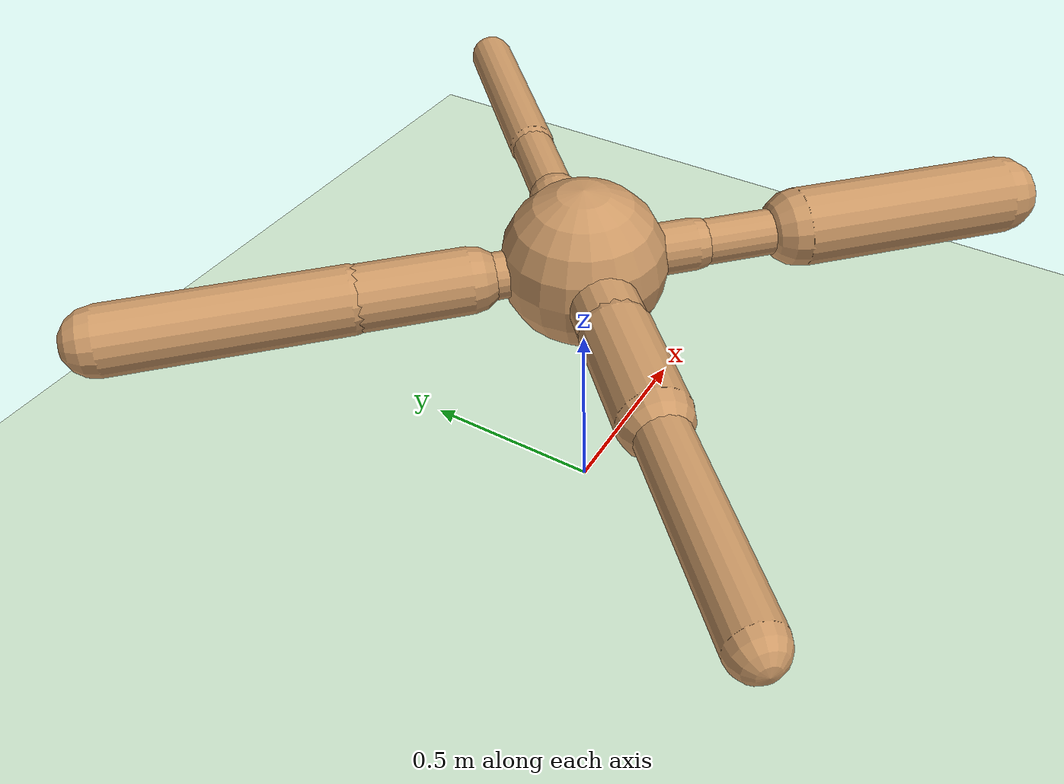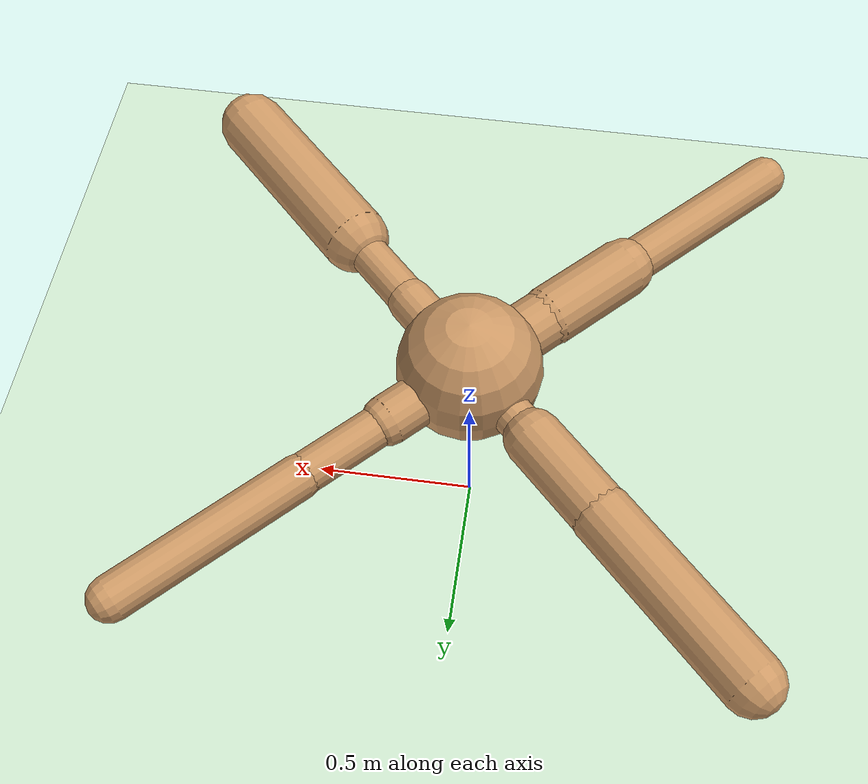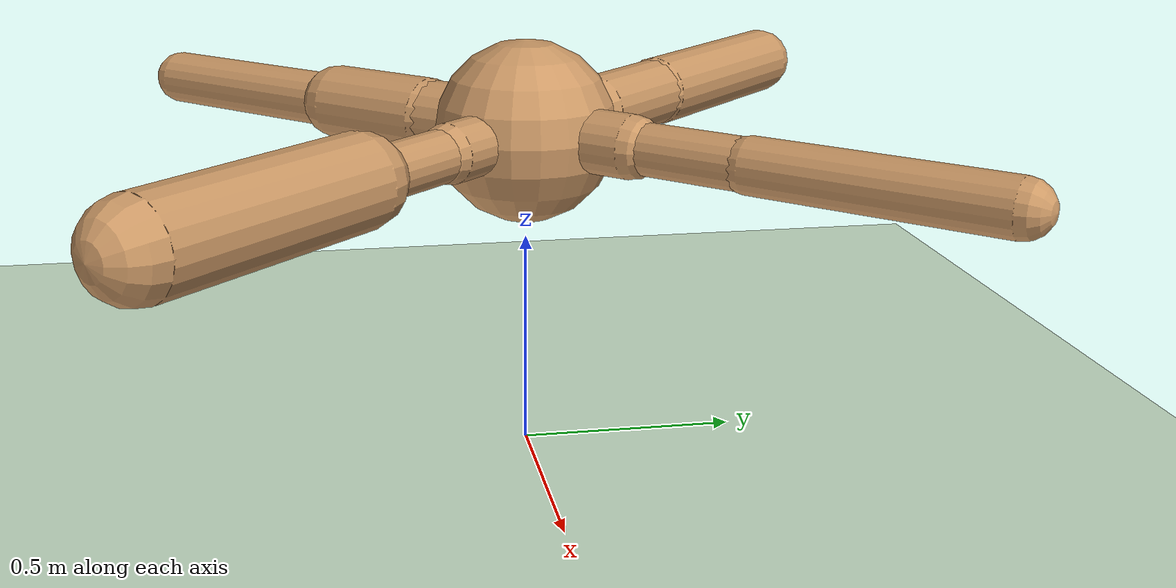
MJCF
<?xml version="1.0" encoding="utf-8"?>
<mujoco model="ant">
	<compiler angle="degree" coordinate="local" inertiafromgeom="true"></compiler>
	<option integrator="RK4" timestep="0.01"></option>
	<custom>
		<numeric data="0.0 0.0 0.55 1.0 0.0 0.0 0.0 0.0 1.0 0.0 -1.0 0.0 -1.0 0.0 1.0" name="init_qpos"></numeric>
	</custom>
	<default>
		<joint armature="1" damping="0.9370322554701205" limited="true"></joint>
		<geom conaffinity="0" condim="3" density="5.0" friction="0.8898518286674307 0.4127305745078427 0.5071761926364183" margin="0.01" rgba="0.8 0.6 0.4 1"></geom>
	</default>
	<asset>
		<texture builtin="gradient" height="100" rgb1="1 1 1" rgb2="0 0 0" type="skybox" width="100"></texture>
		<texture builtin="flat" height="1278" mark="cross" markrgb="1 1 1" name="texgeom" random="0.01" rgb1="0.8 0.6 0.4" rgb2="0.8 0.6 0.4" type="cube" width="127"></texture>
		<texture builtin="checker" height="100" name="texplane" rgb1="0 0 0" rgb2="0.8 0.8 0.8" type="2d" width="100"></texture>
		<material name="MatPlane" reflectance="0.5" shininess="1" specular="1" texrepeat="60 60" texture="texplane"></material>
		<material name="geom" texture="texgeom" texuniform="true"></material>
	</asset>
	<worldbody>
		<light cutoff="100" diffuse="1 1 1" dir="-0 0 -1.3" directional="true" exponent="1" pos="0 0 1.3" specular=".1 .1 .1"></light>
		<geom conaffinity="1" condim="3" material="MatPlane" name="floor" pos="0 0 0" rgba="0.8 0.9 0.8 1" size="38.46053863070139 30.83313731829369 48.920857651693765" type="plane"></geom>
		<body name="torso" pos="0 0 0.75">
			<camera name="track" mode="trackcom" pos="0 -3 0.3" xyaxes="1 0 0 0 0 1"></camera>
			<geom name="torso_geom" pos="0 0 0" size="0.2077201479330683" type="sphere"></geom>
			<joint armature="0" damping="0.0" limited="false" margin="0.01" name="root" pos="0 0 0" type="free"></joint>
			<body name="front_left_leg" pos="0 0 0">
				<geom fromto="0.0 0.0 0.0 0.2 0.2 0.0" name="aux_1_geom" size="0.07201738569996306" type="capsule"></geom>
				<body name="aux_1" pos="0.2 0.2 0">
					<joint axis="0 0 1" name="hip_1" pos="0.0 0.0 0.0" range="-30 30" type="hinge"></joint>
					<geom fromto="0.0 0.0 0.0 0.2 0.2 0.0" name="left_leg_geom" size="0.05834279305495514" type="capsule"></geom>
					<body pos="0.2 0.2 0">
						<joint axis="-1 1 0" name="ankle_1" pos="0.0 0.0 0.0" range="30 70" type="hinge"></joint>
						<geom fromto="0.0 0.0 0.0 0.4 0.4 0.0" name="left_ankle_geom" size="0.06262759187356298" type="capsule"></geom>
					</body>
				</body>
			</body>
			<body name="front_right_leg" pos="0 0 0">
				<geom fromto="0.0 0.0 0.0 -0.2 0.2 0.0" name="aux_2_geom" size="0.058815955892971894" type="capsule"></geom>
				<body name="aux_2" pos="-0.2 0.2 0">
					<joint axis="0 0 1" name="hip_2" pos="0.0 0.0 0.0" range="-30 30" type="hinge"></joint>
					<geom fromto="0.0 0.0 0.0 -0.2 0.2 0.0" name="right_leg_geom" size="0.08282677974945514" type="capsule"></geom>
					<body pos="-0.2 0.2 0">
						<joint axis="1 1 0" name="ankle_2" pos="0.0 0.0 0.0" range="-70 -30" type="hinge"></joint>
						<geom fromto="0.0 0.0 0.0 -0.4 0.4 0.0" name="right_ankle_geom" size="0.08582127986657043" type="capsule"></geom>
					</body>
				</body>
			</body>
			<body name="back_leg" pos="0 0 0">
				<geom fromto="0.0 0.0 0.0 -0.2 -0.2 0.0" name="aux_3_geom" size="0.08519172563104183" type="capsule"></geom>
				<body name="aux_3" pos="-0.2 -0.2 0">
					<joint axis="0 0 1" name="hip_3" pos="0.0 0.0 0.0" range="-30 30" type="hinge"></joint>
					<geom fromto="0.0 0.0 0.0 -0.2 -0.2 0.0" name="back_leg_geom" size="0.08904160667724653" type="capsule"></geom>
					<body pos="-0.2 -0.2 0">
						<joint axis="-1 1 0" name="ankle_3" pos="0.0 0.0 0.0" range="-70 -30" type="hinge"></joint>
						<geom fromto="0.0 0.0 0.0 -0.4 -0.4 0.0" name="third_ankle_geom" size="0.06589438311774312" type="capsule"></geom>
					</body>
				</body>
			</body>
			<body name="right_back_leg" pos="0 0 0">
				<geom fromto="0.0 0.0 0.0 0.2 -0.2 0.0" name="aux_4_geom" size="0.06683933941745349" type="capsule"></geom>
				<body name="aux_4" pos="0.2 -0.2 0">
					<joint axis="0 0 1" name="hip_4" pos="0.0 0.0 0.0" range="-30 30" type="hinge"></joint>
					<geom fromto="0.0 0.0 0.0 0.2 -0.2 0.0" name="rightback_leg_geom" size="0.058867393664836974" type="capsule"></geom>
					<body pos="0.2 -0.2 0">
						<joint axis="1 1 0" name="ankle_4" pos="0.0 0.0 0.0" range="30 70" type="hinge"></joint>
						<geom fromto="0.0 0.0 0.0 0.4 -0.4 0.0" name="fourth_ankle_geom" size="0.10164648060766368" type="capsule"></geom>
					</body>
				</body>
			</body>
		</body>
	</worldbody>
	<actuator>
		<motor ctrllimited="true" ctrlrange="-1.0 1.0" joint="hip_4" gear="150"></motor>
		<motor ctrllimited="true" ctrlrange="-1.0 1.0" joint="ankle_4" gear="150"></motor>
		<motor ctrllimited="true" ctrlrange="-1.0 1.0" joint="hip_1" gear="150"></motor>
		<motor ctrllimited="true" ctrlrange="-1.0 1.0" joint="ankle_1" gear="150"></motor>
		<motor ctrllimited="true" ctrlrange="-1.0 1.0" joint="hip_2" gear="150"></motor>
		<motor ctrllimited="true" ctrlrange="-1.0 1.0" joint="ankle_2" gear="150"></motor>
		<motor ctrllimited="true" ctrlrange="-1.0 1.0" joint="hip_3" gear="150"></motor>
		<motor ctrllimited="true" ctrlrange="-1.0 1.0" joint="ankle_3" gear="150"></motor>
	</actuator>
</mujoco>
